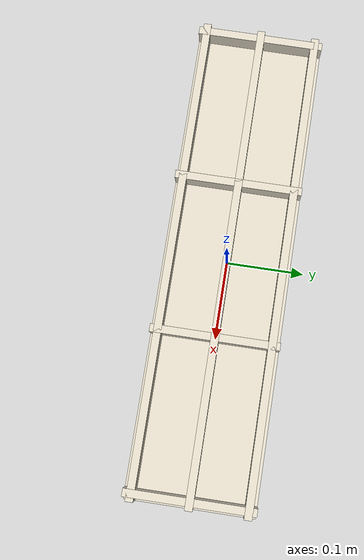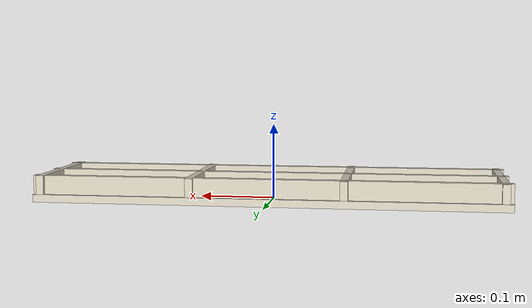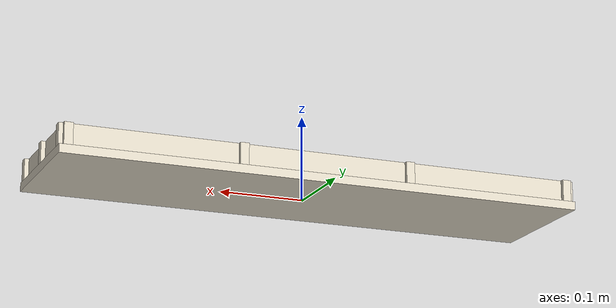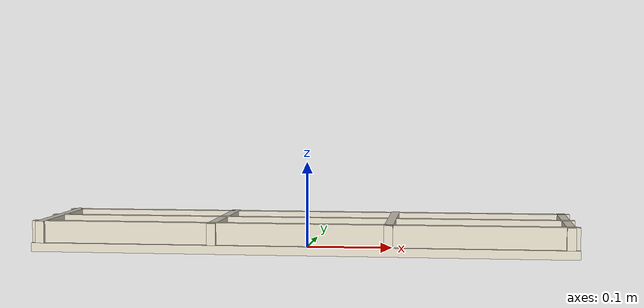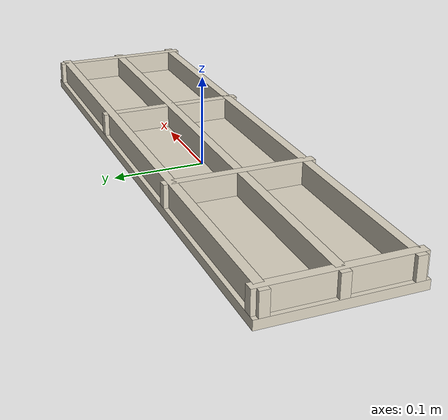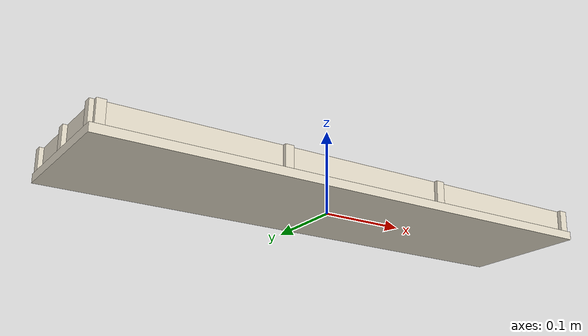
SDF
<?xml version="1.0" ?>
<sdf version="1.8">
  <model name="tray_bar_2x3">
    <link name="link">
      <inertial>
        <pose>0 0 0.0175 0 0 0</pose>
        <mass>0.3</mass>
        <inertia><ixx>0.000703</ixx><iyy>0.009641</iyy><izz>0.010282</izz><ixy>0</ixy><ixz>0</ixz><iyz>0</iyz></inertia>
      </inertial>
      <visual name="base_v">
        <pose>0.0000 0.0000 0.0050 0 0 0</pose>
        <geometry><box><size>0.6200 0.1640 0.0100</size></box></geometry>
        <material><ambient>0.86 0.83 0.76 1</ambient><diffuse>0.86 0.83 0.76 1</diffuse></material>
        <plugin filename="ignition-gazebo-label-system" name="ignition::gazebo::systems::Label"><label>3</label></plugin>
      </visual>
      <collision name="base_c">
        <pose>0.0000 0.0000 0.0050 0 0 0</pose>
        <geometry><box><size>0.6200 0.1640 0.0100</size></box></geometry>
        <surface><friction><ode><mu>0.9</mu><mu2>0.9</mu2></ode></friction></surface>
      </collision>
      <visual name="wx0_v">
        <pose>-0.3000 0.0000 0.0225 0 0 0</pose>
        <geometry><box><size>0.0100 0.1640 0.0250</size></box></geometry>
        <material><ambient>0.86 0.83 0.76 1</ambient><diffuse>0.86 0.83 0.76 1</diffuse></material>
        <plugin filename="ignition-gazebo-label-system" name="ignition::gazebo::systems::Label"><label>3</label></plugin>
      </visual>
      <collision name="wx0_c">
        <pose>-0.3000 0.0000 0.0225 0 0 0</pose>
        <geometry><box><size>0.0100 0.1640 0.0250</size></box></geometry>
        <surface><friction><ode><mu>0.9</mu><mu2>0.9</mu2></ode></friction></surface>
      </collision>
      <visual name="wx1_v">
        <pose>-0.1000 0.0000 0.0225 0 0 0</pose>
        <geometry><box><size>0.0100 0.1640 0.0250</size></box></geometry>
        <material><ambient>0.86 0.83 0.76 1</ambient><diffuse>0.86 0.83 0.76 1</diffuse></material>
        <plugin filename="ignition-gazebo-label-system" name="ignition::gazebo::systems::Label"><label>3</label></plugin>
      </visual>
      <collision name="wx1_c">
        <pose>-0.1000 0.0000 0.0225 0 0 0</pose>
        <geometry><box><size>0.0100 0.1640 0.0250</size></box></geometry>
        <surface><friction><ode><mu>0.9</mu><mu2>0.9</mu2></ode></friction></surface>
      </collision>
      <visual name="wx2_v">
        <pose>0.1000 0.0000 0.0225 0 0 0</pose>
        <geometry><box><size>0.0100 0.1640 0.0250</size></box></geometry>
        <material><ambient>0.86 0.83 0.76 1</ambient><diffuse>0.86 0.83 0.76 1</diffuse></material>
        <plugin filename="ignition-gazebo-label-system" name="ignition::gazebo::systems::Label"><label>3</label></plugin>
      </visual>
      <collision name="wx2_c">
        <pose>0.1000 0.0000 0.0225 0 0 0</pose>
        <geometry><box><size>0.0100 0.1640 0.0250</size></box></geometry>
        <surface><friction><ode><mu>0.9</mu><mu2>0.9</mu2></ode></friction></surface>
      </collision>
      <visual name="wx3_v">
        <pose>0.3000 0.0000 0.0225 0 0 0</pose>
        <geometry><box><size>0.0100 0.1640 0.0250</size></box></geometry>
        <material><ambient>0.86 0.83 0.76 1</ambient><diffuse>0.86 0.83 0.76 1</diffuse></material>
        <plugin filename="ignition-gazebo-label-system" name="ignition::gazebo::systems::Label"><label>3</label></plugin>
      </visual>
      <collision name="wx3_c">
        <pose>0.3000 0.0000 0.0225 0 0 0</pose>
        <geometry><box><size>0.0100 0.1640 0.0250</size></box></geometry>
        <surface><friction><ode><mu>0.9</mu><mu2>0.9</mu2></ode></friction></surface>
      </collision>
      <visual name="wy0_v">
        <pose>0.0000 -0.0720 0.0225 0 0 0</pose>
        <geometry><box><size>0.6200 0.0100 0.0250</size></box></geometry>
        <material><ambient>0.86 0.83 0.76 1</ambient><diffuse>0.86 0.83 0.76 1</diffuse></material>
        <plugin filename="ignition-gazebo-label-system" name="ignition::gazebo::systems::Label"><label>3</label></plugin>
      </visual>
      <collision name="wy0_c">
        <pose>0.0000 -0.0720 0.0225 0 0 0</pose>
        <geometry><box><size>0.6200 0.0100 0.0250</size></box></geometry>
        <surface><friction><ode><mu>0.9</mu><mu2>0.9</mu2></ode></friction></surface>
      </collision>
      <visual name="wy1_v">
        <pose>0.0000 0.0000 0.0225 0 0 0</pose>
        <geometry><box><size>0.6200 0.0100 0.0250</size></box></geometry>
        <material><ambient>0.86 0.83 0.76 1</ambient><diffuse>0.86 0.83 0.76 1</diffuse></material>
        <plugin filename="ignition-gazebo-label-system" name="ignition::gazebo::systems::Label"><label>3</label></plugin>
      </visual>
      <collision name="wy1_c">
        <pose>0.0000 0.0000 0.0225 0 0 0</pose>
        <geometry><box><size>0.6200 0.0100 0.0250</size></box></geometry>
        <surface><friction><ode><mu>0.9</mu><mu2>0.9</mu2></ode></friction></surface>
      </collision>
      <visual name="wy2_v">
        <pose>0.0000 0.0720 0.0225 0 0 0</pose>
        <geometry><box><size>0.6200 0.0100 0.0250</size></box></geometry>
        <material><ambient>0.86 0.83 0.76 1</ambient><diffuse>0.86 0.83 0.76 1</diffuse></material>
        <plugin filename="ignition-gazebo-label-system" name="ignition::gazebo::systems::Label"><label>3</label></plugin>
      </visual>
      <collision name="wy2_c">
        <pose>0.0000 0.0720 0.0225 0 0 0</pose>
        <geometry><box><size>0.6200 0.0100 0.0250</size></box></geometry>
        <surface><friction><ode><mu>0.9</mu><mu2>0.9</mu2></ode></friction></surface>
      </collision>
    </link>
  </model>
</sdf>
